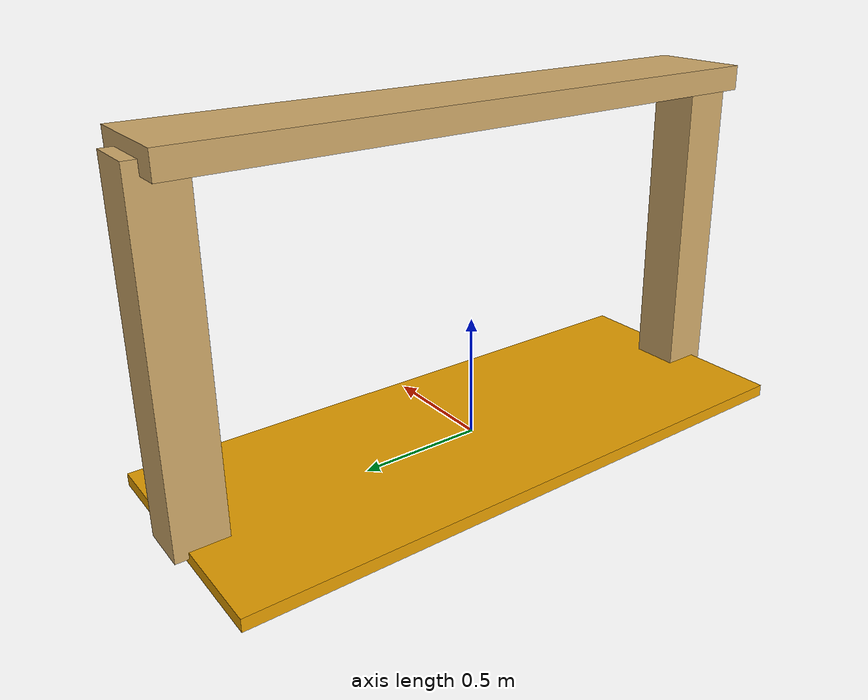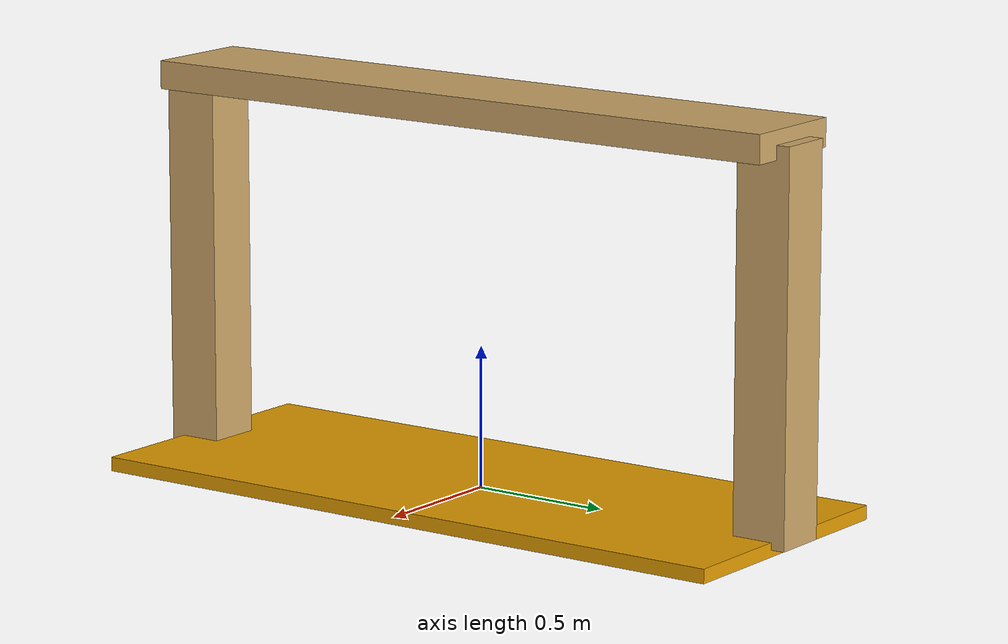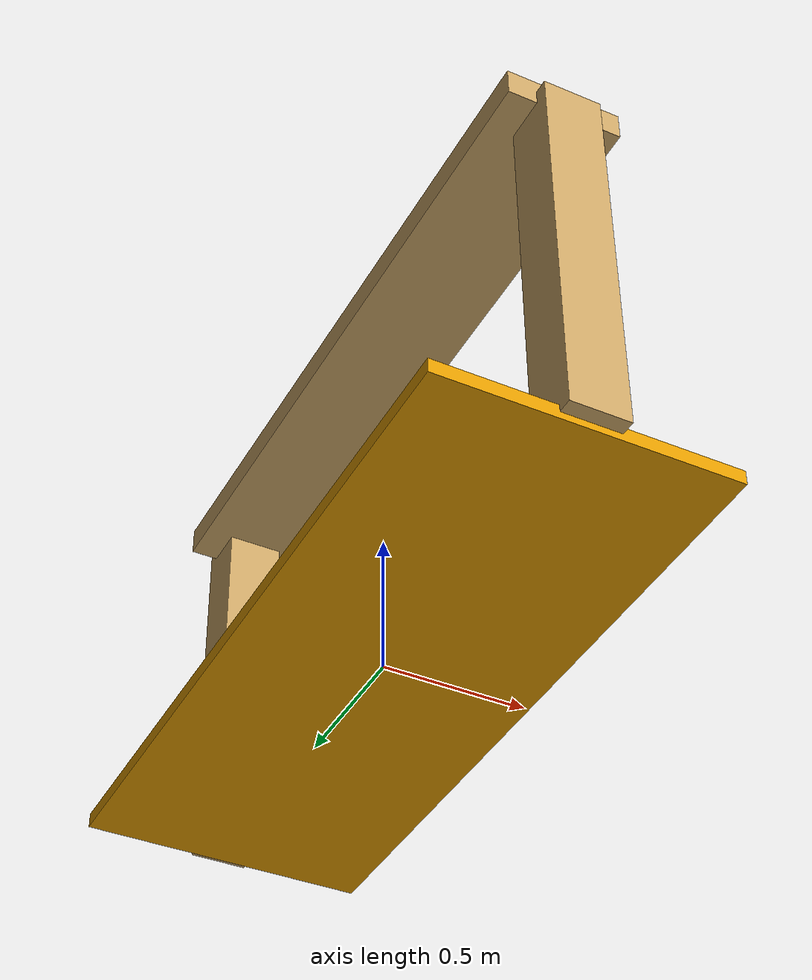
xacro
<?xml version="1.0" encoding="utf-8"?>
<robot name="lab_table" xmlns:xacro="http://www.ros.org/wiki/xacro">

  <xacro:property name="total_width" value="2.5" />
  <xacro:property name="beam_height" value="1.35" />
  <xacro:property name="pillar_offset" value="1.2" />

  <link name="table_top">
    <inertial>
      <origin xyz="0 0 0.5" rpy="0 0 0" />
      <mass value="50.0" />
      <inertia ixx="10.0" ixy="0" ixz="0" iyy="10.0" iyz="0" izz="10.0" />
    </inertial>

    <visual>
      <origin xyz="0 0 0" rpy="0 0 0" />
      <geometry>
        <box size="1.0 ${total_width} 0.05" />
      </geometry>
      <material name="grey_base">
        <color rgba="0.81 0.81 0.63 ${table_alpha}" />
      </material>
    </visual>
    <collision>
      <origin xyz="0 0 0" rpy="0 0 0" />
      <geometry>
        <box size="1.0 ${total_width} 0.05" />
      </geometry>
    </collision>

    <visual>
      <origin xyz="0 ${pillar_offset} ${beam_height/2}" rpy="0 0 0" />
      <geometry>
         <box size="0.2 0.2 ${beam_height}" />
      </geometry>
      <material name="wood_pillar_l">
        <color rgba="0.81 0.66 0.41 1" />
      </material>
    </visual>
    <collision>
      <origin xyz="0 ${pillar_offset} ${beam_height/2}" rpy="0 0 0" />
      <geometry>
         <box size="0.2 0.2 ${beam_height}" />
      </geometry>
    </collision>

    <visual>
      <origin xyz="0 -${pillar_offset} ${beam_height/2}" rpy="0 0 0" />
      <geometry>
         <box size="0.2 0.2 ${beam_height}" />
      </geometry>
      <material name="wood_pillar_r">
        <color rgba="0.81 0.66 0.41 1"/>
      </material>
    </visual>
    <collision>
      <origin xyz="0 -${pillar_offset} ${beam_height/2}" rpy="0 0 0" />
      <geometry>
         <box size="0.2 0.2 ${beam_height}" />
      </geometry>
    </collision>

    <visual>
      <origin xyz="0 0 ${beam_height}" rpy="0 0 0" />
      <geometry>
         <box size="0.4 ${total_width} 0.1" />
      </geometry>
      <material name="wood_beam">
        <color rgba="0.81 0.66 0.41 1"/>
      </material>
    </visual>
    <collision>
      <origin xyz="0 0 ${beam_height}" rpy="0 0 0" />
      <geometry>
         <box size="0.4 ${total_width} 0.1" />
      </geometry>
    </collision>
  </link>

  <link name="table_link1">
    <inertial>
      <origin xyz="0 0 0" rpy="0 0 0" />
      <mass value="0.001" />
      <inertia ixx="0.0001" ixy="0" ixz="0" iyy="0.0001" iyz="0" izz="0.0001" />
    </inertial>
  </link>

  <joint name="jnt1" type="fixed">
    <origin xyz="0.005 0 1.28" rpy="-1.5708 0 3.1416" />
    <parent link="table_top" />
    <child link="table_link1" />
    <axis xyz="0 0 0" />
  </joint>

</robot>
